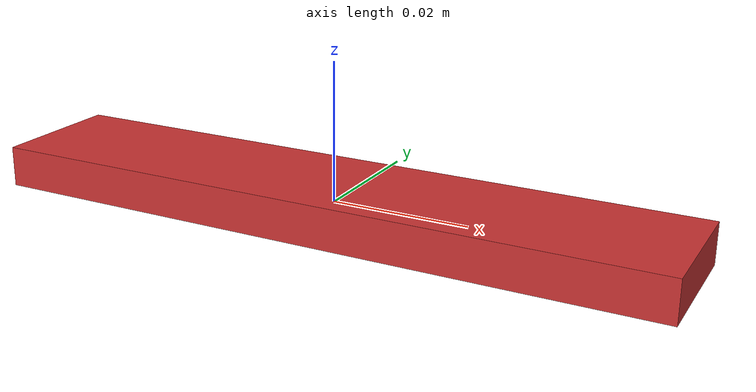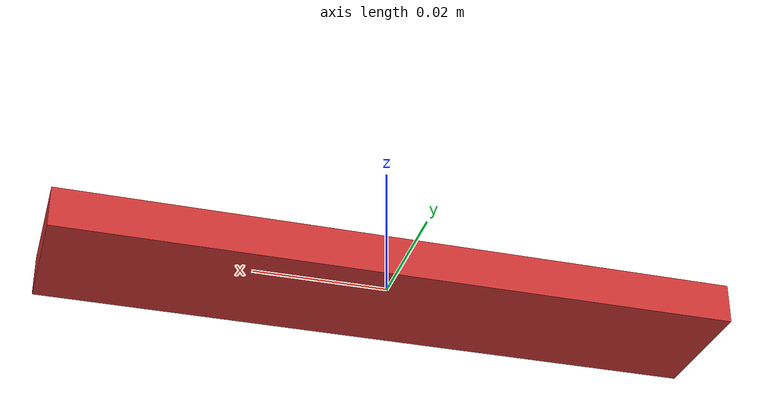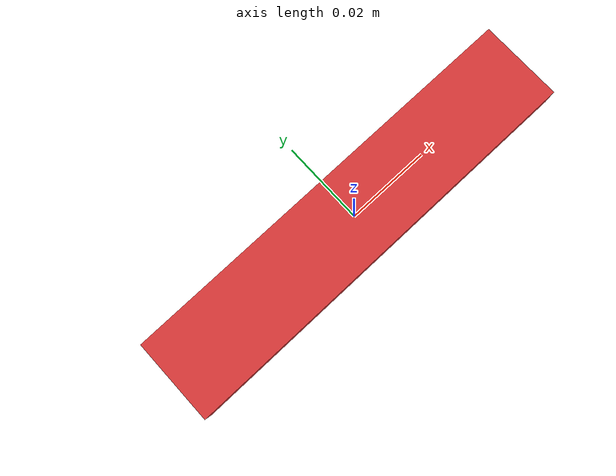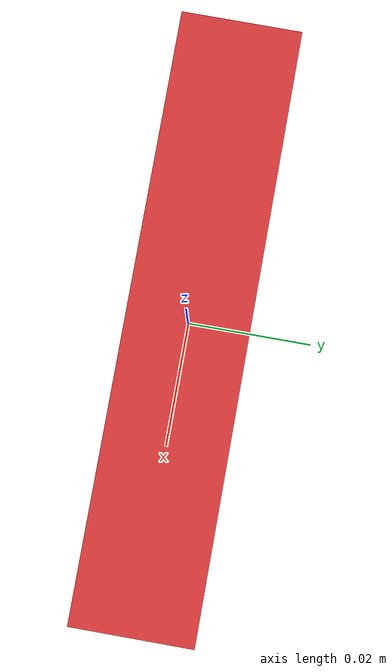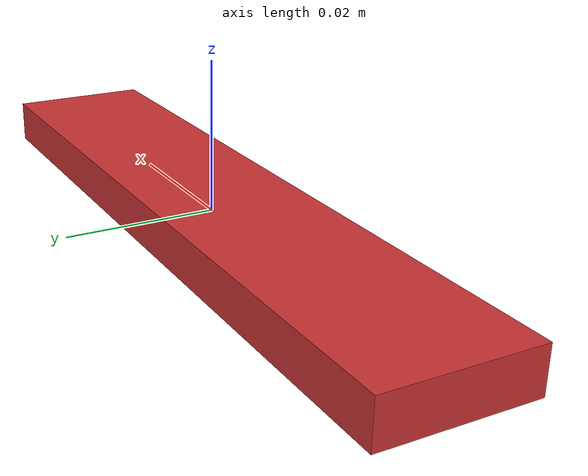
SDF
<sdf version="1.6">
  <model name="payload_model">
    <pose>0 0 0 0 0 0</pose>
    <link name="payload_link">
      <inertial>
        <mass>0.03</mass>
        <inertia>
          <ixx>1.1e-6</ixx><iyy>2.5e-5</iyy><izz>2.6e-5</izz>
        </inertia>
      </inertial>
      <visual name="payload_visual">
        <geometry><box><size>0.100 0.020 0.006</size></box></geometry>
        <material><ambient>0.8 0.2 0.2 1</ambient><diffuse>0.8 0.2 0.2 1</diffuse></material>
      </visual>
      <collision name="payload_collision">
        <geometry><box><size>0.100 0.020 0.006</size></box></geometry>
        <surface><friction><ode><mu>1.0</mu><mu2>1.0</mu2></ode></friction></surface>
      </collision>
    </link>
  </model>
</sdf>
